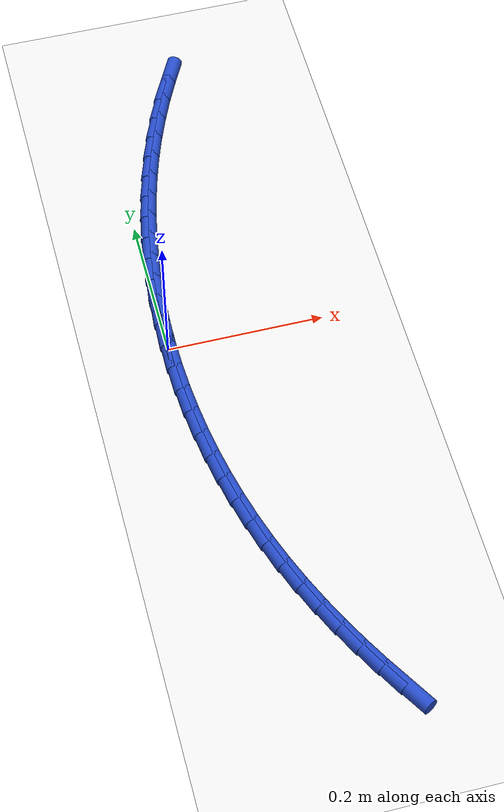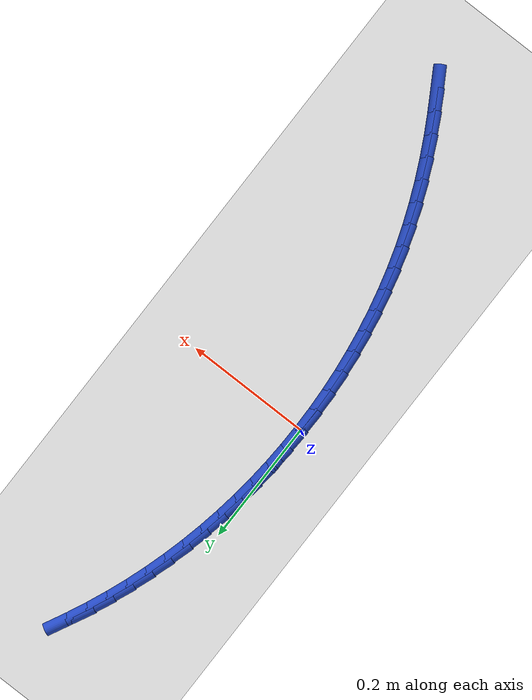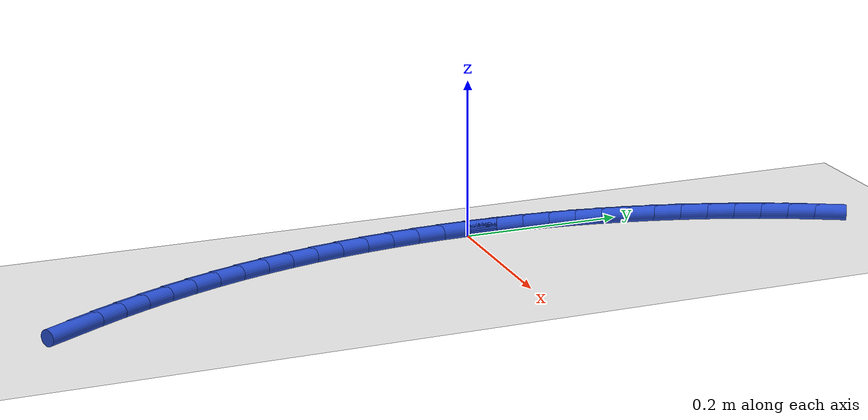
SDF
<sdf version="1.6">
 <world name="default">
  <model name="ground_plane">
   <static>1</static>
   <link name="link">
    <collision name="collision">
     <geometry><plane><normal>0 0 1</normal><size>100 100</size></plane></geometry>
     <surface><friction><ode><mu>100</mu><mu2>50</mu2></ode></friction></surface>
    </collision>
    <visual name="visual">
     <cast_shadows>0</cast_shadows>
     <geometry><plane><normal>0 0 1</normal><size>100 100</size></plane></geometry>
     <material>
      <script><uri>file://media/materials/scripts/gazebo.material</uri><name>Gazebo/WhiteGlow</name></script>
     </material>
    </visual>
   </link>
  </model>
  <model name="line">
   <link name="link_0">
    <pose>2.2551405187698492e-17 4.85722573273506e-17 0.01 0 1.57 1.5520220317572857</pose>
    <collision name="collision">
     <geometry><cylinder><radius>0.01</radius><length>0.08</length></cylinder></geometry>
    </collision>
    <visual name="visual">
     <material>
      <script><name>Gazebo/Blue</name><uri>file://media/materials/scripts/gazebo.material</uri></script>
     </material>
     <geometry><cylinder><radius>0.01</radius><length>0.08</length></cylinder></geometry>
    </visual>
   </link>
   <link name="link_1">
    <pose>0.0006526197692008362 0.034757261931345186 0.01 0 1.57 1.5178676718023638</pose>
    <collision name="collision">
     <geometry><cylinder><radius>0.01</radius><length>0.08</length></cylinder></geometry>
    </collision>
    <visual name="visual">
     <material>
      <script><name>Gazebo/Blue</name><uri>file://media/materials/scripts/gazebo.material</uri></script>
     </material>
     <geometry><cylinder><radius>0.01</radius><length>0.08</length></cylinder></geometry>
    </visual>
   </link>
   <link name="link_2">
    <pose>0.002491596640277104 0.06946925844557372 0.01 0 1.57 1.4837287674956556</pose>
    <collision name="collision">
     <geometry><cylinder><radius>0.01</radius><length>0.08</length></cylinder></geometry>
    </collision>
    <visual name="visual">
     <material>
      <script><name>Gazebo/Blue</name><uri>file://media/materials/scripts/gazebo.material</uri></script>
     </material>
     <geometry><cylinder><radius>0.01</radius><length>0.08</length></cylinder></geometry>
    </visual>
   </link>
   <link name="link_3">
    <pose>0.005513291684226105 0.10408669374520456 0.01 0 1.57 1.4495392395560756</pose>
    <collision name="collision">
     <geometry><cylinder><radius>0.01</radius><length>0.08</length></cylinder></geometry>
    </collision>
    <visual name="visual">
     <material>
      <script><name>Gazebo/Blue</name><uri>file://media/materials/scripts/gazebo.material</uri></script>
     </material>
     <geometry><cylinder><radius>0.01</radius><length>0.08</length></cylinder></geometry>
    </visual>
   </link>
   <link name="link_4">
    <pose>0.009714065972045112 0.13856027203275648 0.01 0 1.57 1.415233017115805</pose>
    <collision name="collision">
     <geometry><cylinder><radius>0.01</radius><length>0.08</length></cylinder></geometry>
    </collision>
    <visual name="visual">
     <material>
      <script><name>Gazebo/Blue</name><uri>file://media/materials/scripts/gazebo.material</uri></script>
     </material>
     <geometry><cylinder><radius>0.01</radius><length>0.08</length></cylinder></geometry>
    </visual>
   </link>
   <link name="link_5">
    <pose>0.0150902805747314 0.17284069751074838 0.01 0 1.57 1.3807442603048132</pose>
    <collision name="collision">
     <geometry><cylinder><radius>0.01</radius><length>0.08</length></cylinder></geometry>
    </collision>
    <visual name="visual">
     <material>
      <script><name>Gazebo/Blue</name><uri>file://media/materials/scripts/gazebo.material</uri></script>
     </material>
     <geometry><cylinder><radius>0.01</radius><length>0.08</length></cylinder></geometry>
    </visual>
   </link>
   <link name="link_6">
    <pose>0.02163829656328225 0.2068786743816991 0.01 0 1.57 1.3460076059429122</pose>
    <collision name="collision">
     <geometry><cylinder><radius>0.01</radius><length>0.08</length></cylinder></geometry>
    </collision>
    <visual name="visual">
     <material>
      <script><name>Gazebo/Blue</name><uri>file://media/materials/scripts/gazebo.material</uri></script>
     </material>
     <geometry><cylinder><radius>0.01</radius><length>0.08</length></cylinder></geometry>
    </visual>
   </link>
   <link name="link_7">
    <pose>0.029354475008694918 0.24062490684812743 0.01 0 1.57 1.3109584502353298</pose>
    <collision name="collision">
     <geometry><cylinder><radius>0.01</radius><length>0.08</length></cylinder></geometry>
    </collision>
    <visual name="visual">
     <material>
      <script><name>Gazebo/Blue</name><uri>file://media/materials/scripts/gazebo.material</uri></script>
     </material>
     <geometry><cylinder><radius>0.01</radius><length>0.08</length></cylinder></geometry>
    </visual>
   </link>
   <link name="link_8">
    <pose>0.0382351769819667 0.2740300991125523 0.01 0 1.57 1.275533282397632</pose>
    <collision name="collision">
     <geometry><cylinder><radius>0.01</radius><length>0.08</length></cylinder></geometry>
    </collision>
    <visual name="visual">
     <material>
      <script><name>Gazebo/Blue</name><uri>file://media/materials/scripts/gazebo.material</uri></script>
     </material>
     <geometry><cylinder><radius>0.01</radius><length>0.08</length></cylinder></geometry>
    </visual>
   </link>
   <link name="link_9">
    <pose>0.04827676355409487 0.30704495537749243 0.01 0 1.57 1.2396948223564486</pose>
    <collision name="collision">
     <geometry><cylinder><radius>0.01</radius><length>0.08</length></cylinder></geometry>
    </collision>
    <visual name="visual">
     <material>
      <script><name>Gazebo/Blue</name><uri>file://media/materials/scripts/gazebo.material</uri></script>
     </material>
     <geometry><cylinder><radius>0.01</radius><length>0.08</length></cylinder></geometry>
    </visual>
   </link>
   <link name="link_10">
    <pose>0.059474993377184336 0.3396210488036305 0.01 0 1.57 1.204096763167114</pose>
    <collision name="collision">
     <geometry><cylinder><radius>0.01</radius><length>0.08</length></cylinder></geometry>
    </collision>
    <visual name="visual">
     <material>
      <script><name>Gazebo/Blue</name><uri>file://media/materials/scripts/gazebo.material</uri></script>
     </material>
     <geometry><cylinder><radius>0.01</radius><length>0.08</length></cylinder></geometry>
    </visual>
   </link>
   <link name="link_11">
    <pose>0.07180875730859781 0.3717342834750819 0.01 0 1.57 1.169546582591434</pose>
    <collision name="collision">
     <geometry><cylinder><radius>0.01</radius><length>0.08</length></cylinder></geometry>
    </collision>
    <visual name="visual">
     <material>
      <script><name>Gazebo/Blue</name><uri>file://media/materials/scripts/gazebo.material</uri></script>
     </material>
     <geometry><cylinder><radius>0.01</radius><length>0.08</length></cylinder></geometry>
    </visual>
   </link>
   <link name="link_12">
    <pose>0.08523821304139582 0.4033875850987203 0.01 0 1.57 1.1361345362943869</pose>
    <collision name="collision">
     <geometry><cylinder><radius>0.01</radius><length>0.08</length></cylinder></geometry>
    </collision>
    <visual name="visual">
     <material>
      <script><name>Gazebo/Blue</name><uri>file://media/materials/scripts/gazebo.material</uri></script>
     </material>
     <geometry><cylinder><radius>0.01</radius><length>0.08</length></cylinder></geometry>
    </visual>
   </link>
   <link name="link_13">
    <pose>0.09972254148869569 0.43458528833608023 0.01 0 1.57 1.1038973909347334</pose>
    <collision name="collision">
     <geometry><cylinder><radius>0.01</radius><length>0.08</length></cylinder></geometry>
    </collision>
    <visual name="visual">
     <material>
      <script><name>Gazebo/Blue</name><uri>file://media/materials/scripts/gazebo.material</uri></script>
     </material>
     <geometry><cylinder><radius>0.01</radius><length>0.08</length></cylinder></geometry>
    </visual>
   </link>
   <link name="link_174">
    <pose>0.15125118540399957 -0.5255727380133621 0.01 0 1.57 -1.0340980107529492</pose>
    <collision name="collision">
     <geometry><cylinder><radius>0.01</radius><length>0.08</length></cylinder></geometry>
    </collision>
    <visual name="visual">
     <material>
      <script><name>Gazebo/Blue</name><uri>file://media/materials/scripts/gazebo.material</uri></script>
     </material>
     <geometry><cylinder><radius>0.01</radius><length>0.08</length></cylinder></geometry>
    </visual>
   </link>
   <link name="link_175">
    <pose>0.13352566788498527 -0.4957794706805624 0.01 0 1.57 -1.0635953391204573</pose>
    <collision name="collision">
     <geometry><cylinder><radius>0.01</radius><length>0.08</length></cylinder></geometry>
    </collision>
    <visual name="visual">
     <material>
      <script><name>Gazebo/Blue</name><uri>file://media/materials/scripts/gazebo.material</uri></script>
     </material>
     <geometry><cylinder><radius>0.01</radius><length>0.08</length></cylinder></geometry>
    </visual>
   </link>
   <link name="link_176">
    <pose>0.11669909342641462 -0.46549894694315935 0.01 0 1.57 -1.0945694400089856</pose>
    <collision name="collision">
     <geometry><cylinder><radius>0.01</radius><length>0.08</length></cylinder></geometry>
    </collision>
    <visual name="visual">
     <material>
      <script><name>Gazebo/Blue</name><uri>file://media/materials/scripts/gazebo.material</uri></script>
     </material>
     <geometry><cylinder><radius>0.01</radius><length>0.08</length></cylinder></geometry>
    </visual>
   </link>
   <link name="link_177">
    <pose>0.1008318264825409 -0.43473796503822787 0.01 0 1.57 -1.12705702920762</pose>
    <collision name="collision">
     <geometry><cylinder><radius>0.01</radius><length>0.08</length></cylinder></geometry>
    </collision>
    <visual name="visual">
     <material>
      <script><name>Gazebo/Blue</name><uri>file://media/materials/scripts/gazebo.material</uri></script>
     </material>
     <geometry><cylinder><radius>0.01</radius><length>0.08</length></cylinder></geometry>
    </visual>
   </link>
   <link name="link_178">
    <pose>0.08598423150761719 -0.40350332320284266 0.01 0 1.57 -1.1610856733102182</pose>
    <collision name="collision">
     <geometry><cylinder><radius>0.01</radius><length>0.08</length></cylinder></geometry>
    </collision>
    <visual name="visual">
     <material>
      <script><name>Gazebo/Blue</name><uri>file://media/materials/scripts/gazebo.material</uri></script>
     </material>
     <geometry><cylinder><radius>0.01</radius><length>0.08</length></cylinder></geometry>
    </visual>
   </link>
   <link name="link_179">
    <pose>0.072216672955897 -0.37180181967407894 0.01 0 1.57 -1.1966713092448868</pose>
    <collision name="collision">
     <geometry><cylinder><radius>0.01</radius><length>0.08</length></cylinder></geometry>
    </collision>
    <visual name="visual">
     <material>
      <script><name>Gazebo/Blue</name><uri>file://media/materials/scripts/gazebo.material</uri></script>
     </material>
     <geometry><cylinder><radius>0.01</radius><length>0.08</length></cylinder></geometry>
    </visual>
   </link>
   <link name="link_180">
    <pose>0.05958951528163286 -0.3396402526890104 0.01 0 1.57 -1.2337593336999473</pose>
    <collision name="collision">
     <geometry><cylinder><radius>0.01</radius><length>0.08</length></cylinder></geometry>
    </collision>
    <visual name="visual">
     <material>
      <script><name>Gazebo/Blue</name><uri>file://media/materials/scripts/gazebo.material</uri></script>
     </material>
     <geometry><cylinder><radius>0.01</radius><length>0.08</length></cylinder></geometry>
    </visual>
   </link>
   <link name="link_181">
    <pose>0.04816143098128126 -0.3070264703684233 0.01 0 1.57 -1.2712678905054955</pose>
    <collision name="collision">
     <geometry><cylinder><radius>0.01</radius><length>0.08</length></cylinder></geometry>
    </collision>
    <visual name="visual">
     <material>
      <script><name>Gazebo/Blue</name><uri>file://media/materials/scripts/gazebo.material</uri></script>
     </material>
     <geometry><cylinder><radius>0.01</radius><length>0.08</length></cylinder></geometry>
    </visual>
   </link>
   <link name="link_182">
    <pose>0.03795864335573571 -0.27398845601728 0.01 0 1.57 -1.3082527165254232</pose>
    <collision name="collision">
     <geometry><cylinder><radius>0.01</radius><length>0.08</length></cylinder></geometry>
    </collision>
    <visual name="visual">
     <material>
      <script><name>Gazebo/Blue</name><uri>file://media/materials/scripts/gazebo.material</uri></script>
     </material>
     <geometry><cylinder><radius>0.01</radius><length>0.08</length></cylinder></geometry>
    </visual>
   </link>
   <link name="link_183">
    <pose>0.028978157664480655 -0.24057232314792867 0.01 0 1.57 -1.3447195181388816</pose>
    <collision name="collision">
     <geometry><cylinder><radius>0.01</radius><length>0.08</length></cylinder></geometry>
    </collision>
    <visual name="visual">
     <material>
      <script><name>Gazebo/Blue</name><uri>file://media/materials/scripts/gazebo.material</uri></script>
     </material>
     <geometry><cylinder><radius>0.01</radius><length>0.08</length></cylinder></geometry>
    </visual>
   </link>
   <link name="link_184">
    <pose>0.021215935669589566 -0.20682483277759967 0.01 0 1.57 -1.380712705252752</pose>
    <collision name="collision">
     <geometry><cylinder><radius>0.01</radius><length>0.08</length></cylinder></geometry>
    </collision>
    <visual name="visual">
     <material>
      <script><name>Gazebo/Blue</name><uri>file://media/materials/scripts/gazebo.material</uri></script>
     </material>
     <geometry><cylinder><radius>0.01</radius><length>0.08</length></cylinder></geometry>
    </visual>
   </link>
   <link name="link_185">
    <pose>0.014667939133135898 -0.1727927459235234 0.01 0 1.57 -1.4162800448458923</pose>
    <collision name="collision">
     <geometry><cylinder><radius>0.01</radius><length>0.08</length></cylinder></geometry>
    </collision>
    <visual name="visual">
     <material>
      <script><name>Gazebo/Blue</name><uri>file://media/materials/scripts/gazebo.material</uri></script>
     </material>
     <geometry><cylinder><radius>0.01</radius><length>0.08</length></cylinder></geometry>
    </visual>
   </link>
   <link name="link_186">
    <pose>0.009330129817193208 -0.13852282360293106 0.01 0 1.57 -1.45147208082254</pose>
    <collision name="collision">
     <geometry><cylinder><radius>0.01</radius><length>0.08</length></cylinder></geometry>
    </collision>
    <visual name="visual">
     <material>
      <script><name>Gazebo/Blue</name><uri>file://media/materials/scripts/gazebo.material</uri></script>
     </material>
     <geometry><cylinder><radius>0.01</radius><length>0.08</length></cylinder></geometry>
    </visual>
   </link>
   <link name="link_187">
    <pose>0.00519846948383474 -0.10406182683305165 0.01 0 1.57 -1.4863416243574108</pose>
    <collision name="collision">
     <geometry><cylinder><radius>0.01</radius><length>0.08</length></cylinder></geometry>
    </collision>
    <visual name="visual">
     <material>
      <script><name>Gazebo/Blue</name><uri>file://media/materials/scripts/gazebo.material</uri></script>
     </material>
     <geometry><cylinder><radius>0.01</radius><length>0.08</length></cylinder></geometry>
    </visual>
   </link>
   <link name="link_188">
    <pose>0.0022689198951340787 -0.06945651663111635 0.01 0 1.57 -1.5209433092919469</pose>
    <collision name="collision">
     <geometry><cylinder><radius>0.01</radius><length>0.08</length></cylinder></geometry>
    </collision>
    <visual name="visual">
     <material>
      <script><name>Gazebo/Blue</name><uri>file://media/materials/scripts/gazebo.material</uri></script>
     </material>
     <geometry><cylinder><radius>0.01</radius><length>0.08</length></cylinder></geometry>
    </visual>
   </link>
   <link name="link_189">
    <pose>0.0005374428131646814 -0.034753654014355595 0.01 0 1.57 -1.5553332052304294</pose>
    <collision name="collision">
     <geometry><cylinder><radius>0.01</radius><length>0.08</length></cylinder></geometry>
    </collision>
    <visual name="visual">
     <material>
      <script><name>Gazebo/Blue</name><uri>file://media/materials/scripts/gazebo.material</uri></script>
     </material>
     <geometry><cylinder><radius>0.01</radius><length>0.08</length></cylinder></geometry>
    </visual>
   </link>
   <link name="link_190">
    <pose>1.3877787807814457e-17 2.3592239273284576e-16 0.01 0 1.57 1.552024173949008</pose>
    <collision name="collision">
     <geometry><cylinder><radius>0.01</radius><length>0.08</length></cylinder></geometry>
    </collision>
    <visual name="visual">
     <material>
      <script><name>Gazebo/Blue</name><uri>file://media/materials/scripts/gazebo.material</uri></script>
     </material>
     <geometry><cylinder><radius>0.01</radius><length>0.08</length></cylinder></geometry>
    </visual>
   </link>
   <link name="link_191">
    <pose>0.0006525532177135383 0.034757684394720614 0.01 0 1.57 1.5520241739490082</pose>
    <collision name="collision">
     <geometry><cylinder><radius>0.01</radius><length>0.08</length></cylinder></geometry>
    </collision>
    <visual name="visual">
     <material>
      <script><name>Gazebo/Blue</name><uri>file://media/materials/scripts/gazebo.material</uri></script>
     </material>
     <geometry><cylinder><radius>0.01</radius><length>0.08</length></cylinder></geometry>
    </visual>
   </link>
  </model>
 </world>
</sdf>
